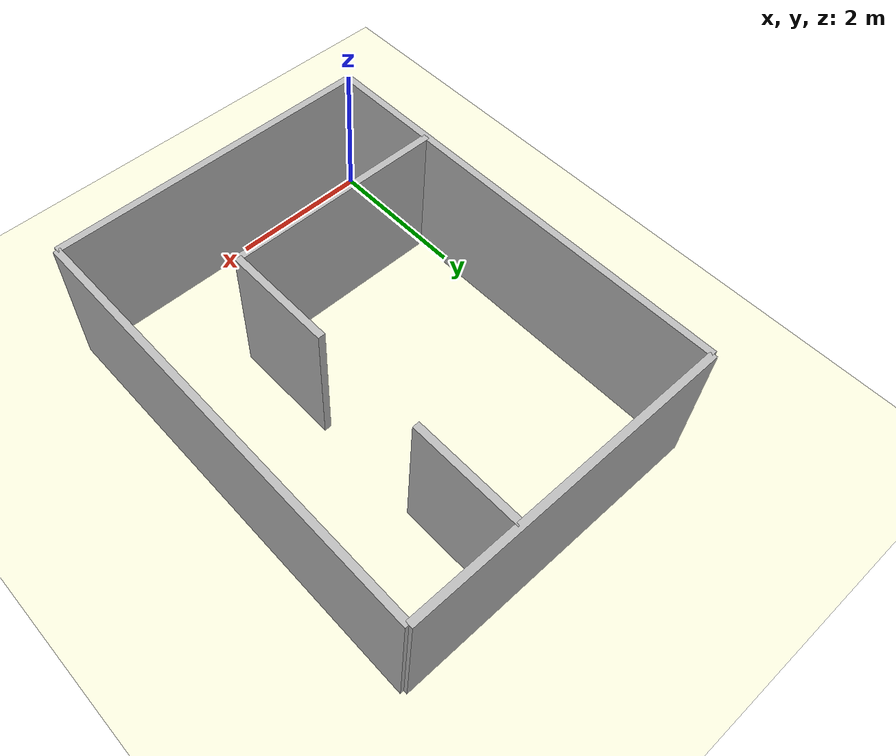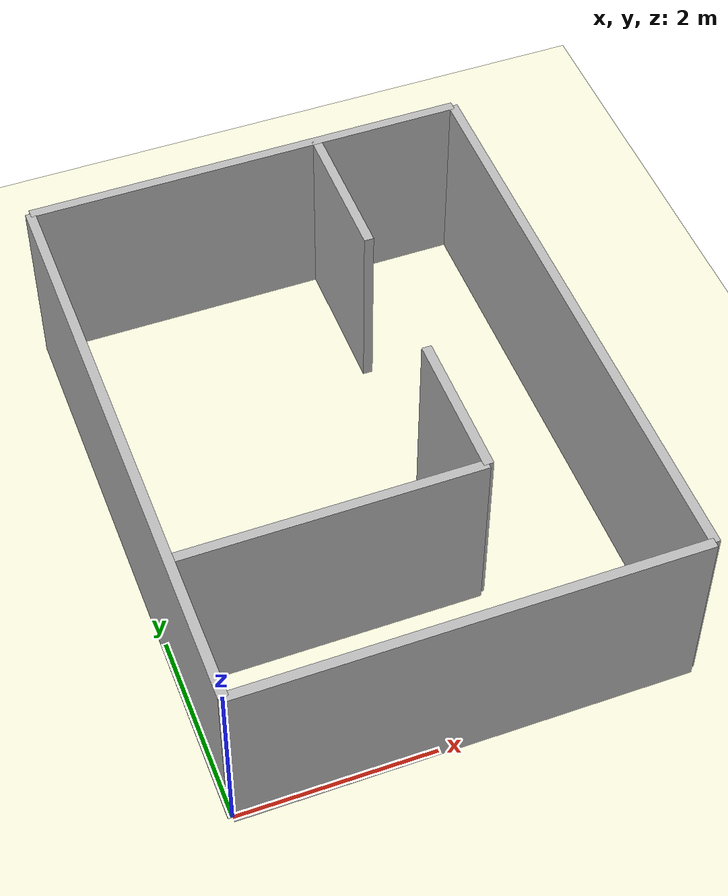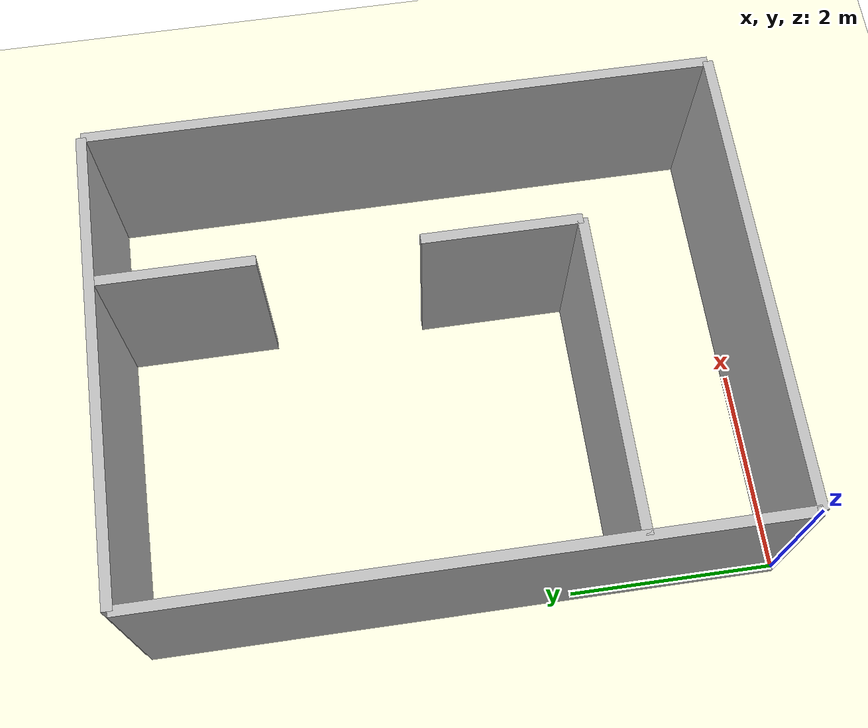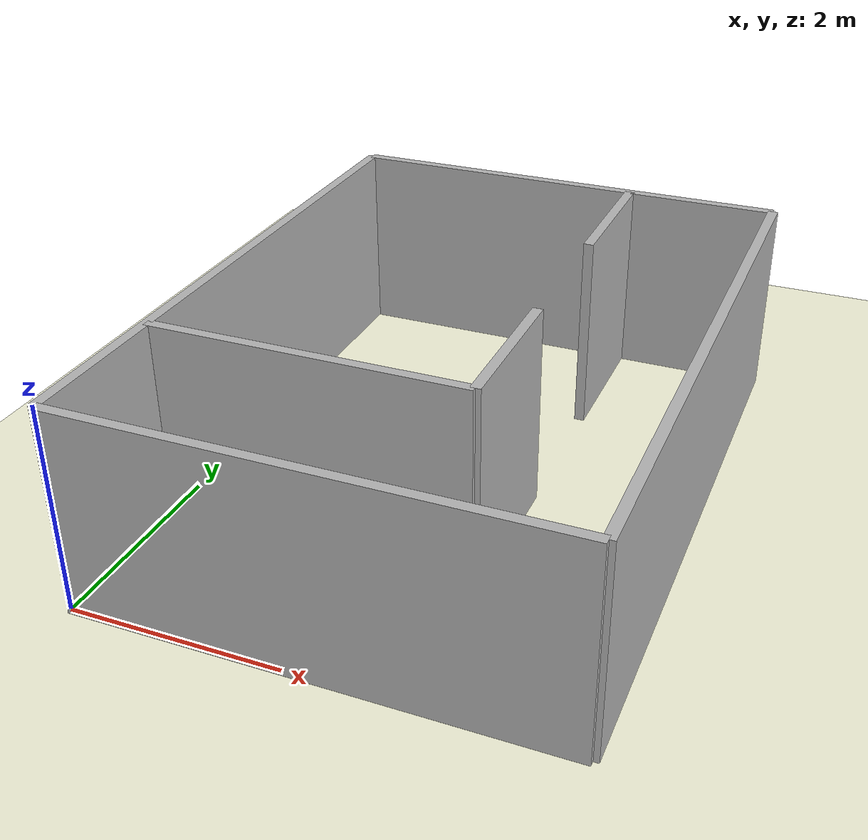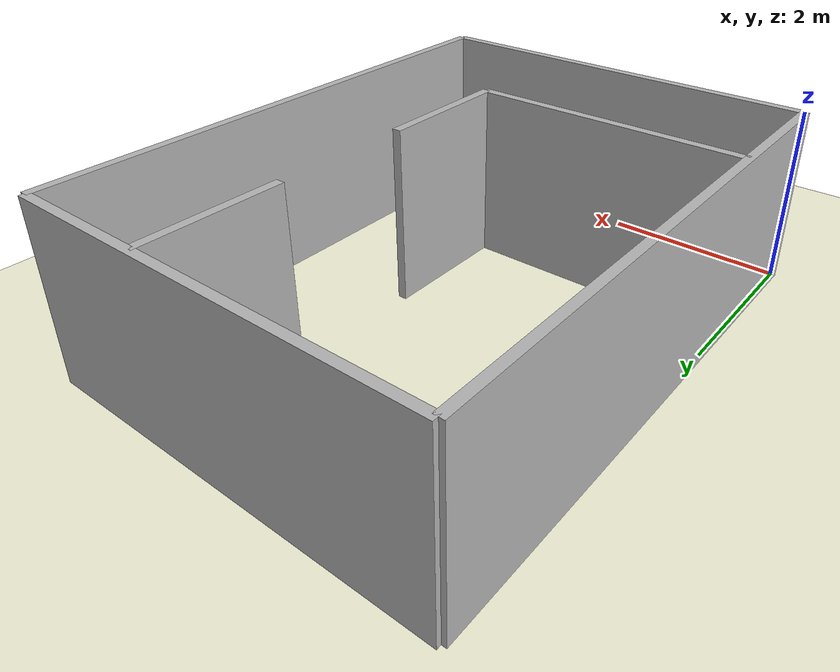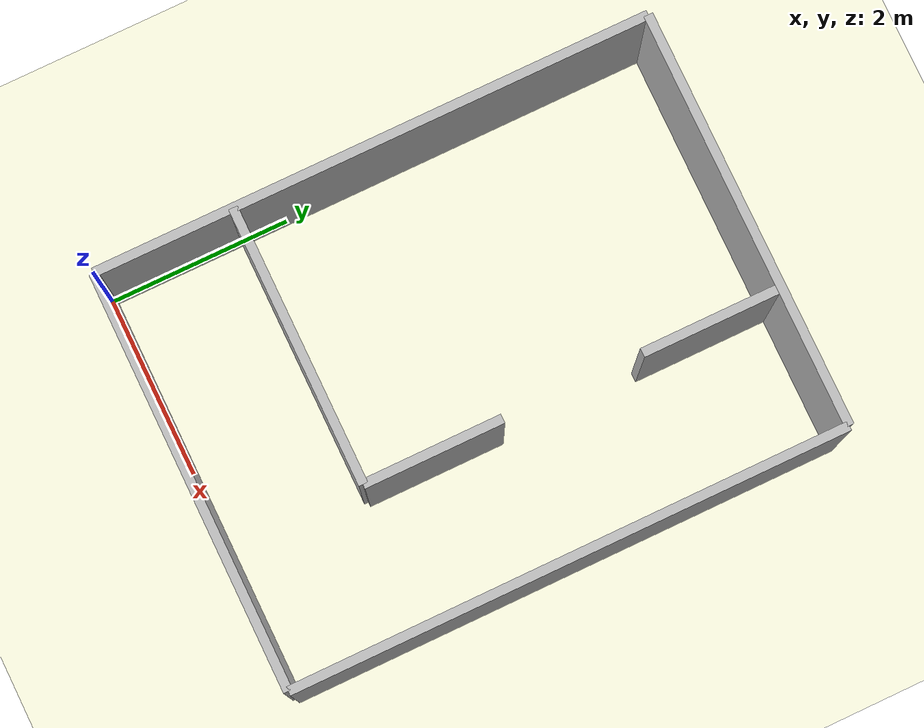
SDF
<?xml version="1.0" ?>
<sdf version="1.7">
  <world name="default">

    <!-- Required Physics -->
    <physics name="1ms" type="ode">
      <max_step_size>0.003</max_step_size>
      <real_time_update_rate>1000.0</real_time_update_rate>
      <real_time_factor>1.0</real_time_factor>
    </physics>

    <!-- Required Plugins -->
    <plugin filename="gz-sim-physics-system"
            name="gz::sim::systems::Physics"/>
    <plugin filename="gz-sim-user-commands-system"
            name="gz::sim::systems::UserCommands"/>
    <plugin filename="gz-sim-scene-broadcaster-system"
            name="gz::sim::systems::SceneBroadcaster"/>
    <plugin filename="gz-sim-sensors-system"
            name="gz::sim::systems::Sensors">
      <render_engine>ogre2</render_engine>
    </plugin>
    <plugin filename="gz-sim-imu-system"
            name="gz::sim::systems::Imu"/>

    <!-- Light -->
    <light name="sun" type="directional">
      <pose>0 0 10 0 0 0</pose>
      <diffuse>1 1 1 1</diffuse>
      <specular>0.1 0.1 0.1 1</specular>
      <direction>-0.5 0.5 -1</direction>
    </light>

    <!-- Ground -->
    <model name="ground_plane">
      <static>true</static>
      <link name="link">
        <collision name="collision">
          <geometry>
            <plane>
              <normal>0 0 1</normal>
              <size>20 20</size>
            </plane>
          </geometry>
        </collision>
        <visual name="visual">
          <geometry>
            <plane>
              <normal>0 0 1</normal>
              <size>20 20</size>
            </plane>
          </geometry>
          <material>
            <ambient>0.96 0.96 0.86 1</ambient>
            <diffuse>0.96 0.96 0.86 1</diffuse>
            <specular>0.1 0.1 0.1 1</specular>
          </material>
        </visual>
      </link>
    </model>

   <model name="outer_north">
      <static>true</static>
      <pose>2.286 6.096 1.0 0 0 0</pose>
      <link name="link"><collision name="c"><geometry><box><size>4.572 0.1 2.0</size></box></geometry></collision>
      <visual name="v"><geometry><box><size>4.572 0.1 2.0</size></box></geometry></visual></link>
    </model>

    <model name="outer_south">
      <static>true</static>
      <pose>2.286 0 1.0 0 0 0</pose>
      <link name="link"><collision name="c"><geometry><box><size>4.572 0.1 2.0</size></box></geometry></collision>
      <visual name="v"><geometry><box><size>4.572 0.1 2.0</size></box></geometry></visual></link>
    </model>

    <model name="outer_west">
      <static>true</static>
      <pose>0 3.048 1.0 0 0 0</pose>
      <link name="link"><collision name="c"><geometry><box><size>0.1 6.096 2.0</size></box></geometry></collision>
      <visual name="v"><geometry><box><size>0.1 6.096 2.0</size></box></geometry></visual></link>
    </model>

    <model name="outer_east">
      <static>true</static>
      <pose>4.572 3.048 1.0 0 0 0</pose>
      <link name="link"><collision name="c"><geometry><box><size>0.1 6.096 2.0</size></box></geometry></collision>
      <visual name="v"><geometry><box><size>0.1 6.096 2.0</size></box></geometry></visual></link>
    </model>

    <model name="room_bottom">
      <static>true</static>
      <pose>1.524 1.524 1.0 0 0 0</pose>
      <link name="link"><collision name="c"><geometry><box><size>3.048 0.1 2.0</size></box></geometry></collision>
      <visual name="v"><geometry><box><size>3.048 0.1 2.0</size></box></geometry></visual></link>
    </model>

    <model name="room_inner_right">
      <static>true</static>
      <pose>3.048 2.280 1.0 0 0 0</pose>
      <link name="link"><collision name="c"><geometry><box><size>0.1 1.524 2.0</size></box></geometry></collision>
      <visual name="v"><geometry><box><size>0.1 1.524 2.0</size></box></geometry></visual></link>
    </model>

    <model name="doorway_top">
      <static>true</static>
      <pose>3.048 5.328 1.0 0 0 0</pose>
      <link name="link"><collision name="c"><geometry><box><size>0.1 1.524 2.0</size></box></geometry></collision>
      <visual name="v"><geometry><box><size>0.1 1.524 2.0</size></box></geometry></visual></link>
    </model>
  </world>
</sdf>
